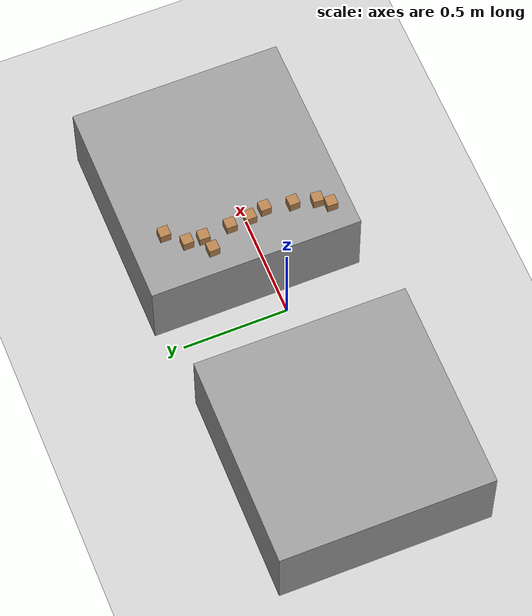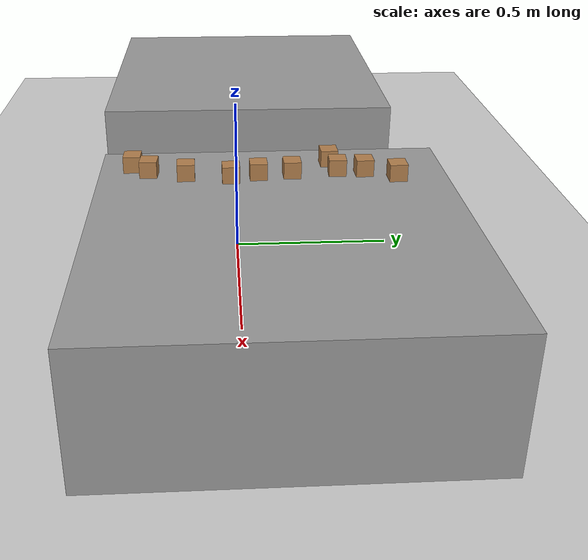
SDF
<sdf version="1.7">
 <world name="default">
  <model name="ground_plane">
   <static>1</static>
   <link name="link">
    <collision name="collision">
     <geometry><plane><normal>0 0 1</normal><size>100 100</size></plane></geometry>
     <surface>
      <contact><collide_bitmask>65535</collide_bitmask></contact>
      <friction><ode><mu>100</mu><mu2>50</mu2></ode></friction>
     </surface>
    </collision>
    <visual name="visual">
     <cast_shadows>0</cast_shadows>
     <geometry><plane><normal>0 0 1</normal><size>100 100</size></plane></geometry>
     <material>
      <script><uri>file://media/materials/scripts/gazebo.material</uri><name>Gazebo/Grey</name></script>
     </material>
    </visual>
   </link>
  </model>
  <light name="sun" type="directional">
   <pose>0 0 10 0 -0 0</pose>
   <diffuse>0.8 0.8 0.8 1</diffuse>
   <specular>0.2 0.2 0.2 1</specular>
   <attenuation>
    <range>1000</range>
    <constant>0.9</constant>
    <linear>0.01</linear>
    <quadratic>0.001</quadratic>
   </attenuation>
   <direction>-0.5 0.1 -0.9</direction>
   <spot><inner_angle>0</inner_angle><outer_angle>0</outer_angle><falloff>0</falloff></spot>
  </light>
  <physics type="ode">
   <real_time_update_rate>1000</real_time_update_rate>
   <max_step_size>0.001</max_step_size>
   <real_time_factor>1</real_time_factor>
  </physics>
  <gravity>0 0 -9.81</gravity>
  <magnetic_field>6e-06 2.3e-05 -4.2e-05</magnetic_field>
  <atmosphere type="adiabatic"/>
  <scene><ambient>0.4 0.4 0.4 1</ambient><background>0.7 0.7 0.7 1</background><shadows>1</shadows></scene>
  <spherical_coordinates>
   <surface_model>EARTH_WGS84</surface_model>
   <latitude_deg>0</latitude_deg>
   <longitude_deg>0</longitude_deg>
   <elevation>0</elevation>
   <heading_deg>0</heading_deg>
  </spherical_coordinates>
  <model name="unit_box">
   <pose>0.605618 0.100703 0.190859 -1.4e-05 1e-06 0.002503</pose>
   <link name="link">
    <inertial>
     <mass>1</mass>
     <inertia>
      <ixx>0.166667</ixx>
      <ixy>0</ixy>
      <ixz>0</ixz>
      <iyy>0.166667</iyy>
      <iyz>0</iyz>
      <izz>0.166667</izz>
     </inertia>
    </inertial>
    <collision name="collision"><geometry><box><size>1 1 0.381731</size></box></geometry></collision>
    <visual name="visual">
     <geometry><box><size>1 1 0.381731</size></box></geometry>
     <material>
      <script><name>Gazebo/Grey</name><uri>file://media/materials/scripts/gazebo.material</uri></script>
     </material>
    </visual>
   </link>
  </model>
  <model name="unit_box_clone">
   <pose>-0.776808 0.054094 0.190866 -0 -0 -0.004923</pose>
   <link name="link">
    <inertial>
     <mass>1</mass>
     <inertia>
      <ixx>0.166667</ixx>
      <ixy>0</ixy>
      <ixz>0</ixz>
      <iyy>0.166667</iyy>
      <iyz>0</iyz>
      <izz>0.166667</izz>
     </inertia>
    </inertial>
    <collision name="collision"><geometry><box><size>1 1 0.381731</size></box></geometry></collision>
    <visual name="visual">
     <geometry><box><size>1 1 0.381731</size></box></geometry>
     <material>
      <script><name>Gazebo/Grey</name><uri>file://media/materials/scripts/gazebo.material</uri></script>
     </material>
    </visual>
   </link>
  </model>
  <model name="wood_cube_5cm">
   <link name="link">
    <pose>0 0 0.025 0 -0 0</pose>
    <inertial>
     <mass>0.0565</mass>
     <inertia>
      <ixx>2.35417e-05</ixx>
      <ixy>0</ixy>
      <ixz>0</ixz>
      <iyy>2.35417e-05</iyy>
      <iyz>0</iyz>
      <izz>2.35417e-05</izz>
     </inertia>
    </inertial>
    <collision name="collision">
     <geometry><box><size>0.05 0.05 0.05</size></box></geometry>
     <surface>
      <contact>
       <poissons_ratio>0.347</poissons_ratio>
       <elastic_modulus>8.8e+09</elastic_modulus>
       <ode><kp>100000</kp><kd>1</kd><max_vel>1</max_vel><min_depth>0.001</min_depth></ode>
      </contact>
      <friction>
       <torsional>
        <coefficient>1</coefficient>
        <use_patch_radius>0</use_patch_radius>
        <surface_radius>0.05</surface_radius>
       </torsional>
      </friction>
     </surface>
    </collision>
    <visual name="visual">
     <geometry><box><size>0.05 0.05 0.05</size></box></geometry>
     <material>
      <script><uri>file://media/materials/scripts/gazebo.material</uri><name>Gazebo/Wood</name></script>
     </material>
    </visual>
   </link>
   <pose>0.35662 0.444726 0.395236 0.016726 -0.000497 0.00169</pose>
  </model>
  <model name="wood_cube_5cm_clone">
   <link name="link">
    <pose>0 0 0.025 0 -0 0</pose>
    <inertial>
     <mass>0.0565</mass>
     <inertia>
      <ixx>2.35417e-05</ixx>
      <ixy>0</ixy>
      <ixz>0</ixz>
      <iyy>2.35417e-05</iyy>
      <iyz>0</iyz>
      <izz>2.35417e-05</izz>
     </inertia>
    </inertial>
    <collision name="collision">
     <geometry><box><size>0.05 0.05 0.05</size></box></geometry>
     <surface>
      <contact>
       <poissons_ratio>0.347</poissons_ratio>
       <elastic_modulus>8.8e+09</elastic_modulus>
       <ode><kp>100000</kp><kd>1</kd><max_vel>1</max_vel><min_depth>0.001</min_depth></ode>
      </contact>
      <friction>
       <torsional>
        <coefficient>1</coefficient>
        <use_patch_radius>0</use_patch_radius>
        <surface_radius>0.05</surface_radius>
       </torsional>
      </friction>
     </surface>
    </collision>
    <visual name="visual">
     <geometry><box><size>0.05 0.05 0.05</size></box></geometry>
     <material>
      <script><uri>file://media/materials/scripts/gazebo.material</uri><name>Gazebo/Wood</name></script>
     </material>
    </visual>
   </link>
   <pose>0.297401 -0.149674 0.38166 0.000221 -5e-06 0.024035</pose>
  </model>
  <model name="wood_cube_5cm_clone_0">
   <link name="link">
    <pose>0 0 0.025 0 -0 0</pose>
    <inertial>
     <mass>0.0565</mass>
     <inertia>
      <ixx>2.35417e-05</ixx>
      <ixy>0</ixy>
      <ixz>0</ixz>
      <iyy>2.35417e-05</iyy>
      <iyz>0</iyz>
      <izz>2.35417e-05</izz>
     </inertia>
    </inertial>
    <collision name="collision">
     <geometry><box><size>0.05 0.05 0.05</size></box></geometry>
     <surface>
      <contact>
       <poissons_ratio>0.347</poissons_ratio>
       <elastic_modulus>8.8e+09</elastic_modulus>
       <ode><kp>100000</kp><kd>1</kd><max_vel>1</max_vel><min_depth>0.001</min_depth></ode>
      </contact>
      <friction>
       <torsional>
        <coefficient>1</coefficient>
        <use_patch_radius>0</use_patch_radius>
        <surface_radius>0.05</surface_radius>
       </torsional>
      </friction>
     </surface>
    </collision>
    <visual name="visual">
     <geometry><box><size>0.05 0.05 0.05</size></box></geometry>
     <material>
      <script><uri>file://media/materials/scripts/gazebo.material</uri><name>Gazebo/Wood</name></script>
     </material>
    </visual>
   </link>
   <pose>0.301171 0.056514 0.381723 0.000213 -6e-06 0.028962</pose>
  </model>
  <model name="wood_cube_5cm_clone_1">
   <link name="link">
    <pose>0 0 0.025 0 -0 0</pose>
    <inertial>
     <mass>0.0565</mass>
     <inertia>
      <ixx>2.35417e-05</ixx>
      <ixy>0</ixy>
      <ixz>0</ixz>
      <iyy>2.35417e-05</iyy>
      <iyz>0</iyz>
      <izz>2.35417e-05</izz>
     </inertia>
    </inertial>
    <collision name="collision">
     <geometry><box><size>0.05 0.05 0.05</size></box></geometry>
     <surface>
      <contact>
       <poissons_ratio>0.347</poissons_ratio>
       <elastic_modulus>8.8e+09</elastic_modulus>
       <ode><kp>100000</kp><kd>1</kd><max_vel>1</max_vel><min_depth>0.001</min_depth></ode>
      </contact>
      <friction>
       <torsional>
        <coefficient>1</coefficient>
        <use_patch_radius>0</use_patch_radius>
        <surface_radius>0.05</surface_radius>
       </torsional>
      </friction>
     </surface>
    </collision>
    <visual name="visual">
     <geometry><box><size>0.05 0.05 0.05</size></box></geometry>
     <material>
      <script><uri>file://media/materials/scripts/gazebo.material</uri><name>Gazebo/Wood</name></script>
     </material>
    </visual>
   </link>
   <pose>0.294429 0.152909 0.381791 5.6e-05 0.000126 0.016548</pose>
  </model>
  <model name="wood_cube_5cm_clone_2">
   <link name="link">
    <pose>0 0 0.025 0 -0 0</pose>
    <inertial>
     <mass>0.0565</mass>
     <inertia>
      <ixx>2.35417e-05</ixx>
      <ixy>0</ixy>
      <ixz>0</ixz>
      <iyy>2.35417e-05</iyy>
      <iyz>0</iyz>
      <izz>2.35417e-05</izz>
     </inertia>
    </inertial>
    <collision name="collision">
     <geometry><box><size>0.05 0.05 0.05</size></box></geometry>
     <surface>
      <contact>
       <poissons_ratio>0.347</poissons_ratio>
       <elastic_modulus>8.8e+09</elastic_modulus>
       <ode><kp>100000</kp><kd>1</kd><max_vel>1</max_vel><min_depth>0.001</min_depth></ode>
      </contact>
      <friction>
       <torsional>
        <coefficient>1</coefficient>
        <use_patch_radius>0</use_patch_radius>
        <surface_radius>0.05</surface_radius>
       </torsional>
      </friction>
     </surface>
    </collision>
    <visual name="visual">
     <geometry><box><size>0.05 0.05 0.05</size></box></geometry>
     <material>
      <script><uri>file://media/materials/scripts/gazebo.material</uri><name>Gazebo/Wood</name></script>
     </material>
    </visual>
   </link>
   <pose>0.21389 0.267635 0.381762 0.000219 -5e-06 0.02495</pose>
  </model>
  <model name="wood_cube_5cm_clone_3">
   <link name="link">
    <pose>0 0 0.025 0 -0 0</pose>
    <inertial>
     <mass>0.0565</mass>
     <inertia>
      <ixx>2.35417e-05</ixx>
      <ixy>0</ixy>
      <ixz>0</ixz>
      <iyy>2.35417e-05</iyy>
      <iyz>0</iyz>
      <izz>2.35417e-05</izz>
     </inertia>
    </inertial>
    <collision name="collision">
     <geometry><box><size>0.05 0.05 0.05</size></box></geometry>
     <surface>
      <contact>
       <poissons_ratio>0.347</poissons_ratio>
       <elastic_modulus>8.8e+09</elastic_modulus>
       <ode><kp>100000</kp><kd>1</kd><max_vel>1</max_vel><min_depth>0.001</min_depth></ode>
      </contact>
      <friction>
       <torsional>
        <coefficient>1</coefficient>
        <use_patch_radius>0</use_patch_radius>
        <surface_radius>0.05</surface_radius>
       </torsional>
      </friction>
     </surface>
    </collision>
    <visual name="visual">
     <geometry><box><size>0.05 0.05 0.05</size></box></geometry>
     <material>
      <script><uri>file://media/materials/scripts/gazebo.material</uri><name>Gazebo/Wood</name></script>
     </material>
    </visual>
   </link>
   <pose>0.230563 -0.305876 0.381645 0.000158 3.3e-05 -0.028143</pose>
  </model>
  <model name="wood_cube_5cm_clone_4">
   <link name="link">
    <pose>0 0 0.025 0 -0 0</pose>
    <inertial>
     <mass>0.0565</mass>
     <inertia>
      <ixx>2.35417e-05</ixx>
      <ixy>0</ixy>
      <ixz>0</ixz>
      <iyy>2.35417e-05</iyy>
      <iyz>0</iyz>
      <izz>2.35417e-05</izz>
     </inertia>
    </inertial>
    <collision name="collision">
     <geometry><box><size>0.05 0.05 0.05</size></box></geometry>
     <surface>
      <contact>
       <poissons_ratio>0.347</poissons_ratio>
       <elastic_modulus>8.8e+09</elastic_modulus>
       <ode><kp>100000</kp><kd>1</kd><max_vel>1</max_vel><min_depth>0.001</min_depth></ode>
      </contact>
      <friction>
       <torsional>
        <coefficient>1</coefficient>
        <use_patch_radius>0</use_patch_radius>
        <surface_radius>0.05</surface_radius>
       </torsional>
      </friction>
     </surface>
    </collision>
    <visual name="visual">
     <geometry><box><size>0.05 0.05 0.05</size></box></geometry>
     <material>
      <script><uri>file://media/materials/scripts/gazebo.material</uri><name>Gazebo/Wood</name></script>
     </material>
    </visual>
   </link>
   <pose>0.289088 0.361402 0.381722 0.00024 -4e-06 0.019313</pose>
  </model>
  <model name="wood_cube_5cm_clone_5">
   <link name="link">
    <pose>0 0 0.025 0 -0 0</pose>
    <inertial>
     <mass>0.0565</mass>
     <inertia>
      <ixx>2.35417e-05</ixx>
      <ixy>0</ixy>
      <ixz>0</ixz>
      <iyy>2.35417e-05</iyy>
      <iyz>0</iyz>
      <izz>2.35417e-05</izz>
     </inertia>
    </inertial>
    <collision name="collision">
     <geometry><box><size>0.05 0.05 0.05</size></box></geometry>
     <surface>
      <contact>
       <poissons_ratio>0.347</poissons_ratio>
       <elastic_modulus>8.8e+09</elastic_modulus>
       <ode><kp>100000</kp><kd>1</kd><max_vel>1</max_vel><min_depth>0.001</min_depth></ode>
      </contact>
      <friction>
       <torsional>
        <coefficient>1</coefficient>
        <use_patch_radius>0</use_patch_radius>
        <surface_radius>0.05</surface_radius>
       </torsional>
      </friction>
     </surface>
    </collision>
    <visual name="visual">
     <geometry><box><size>0.05 0.05 0.05</size></box></geometry>
     <material>
      <script><uri>file://media/materials/scripts/gazebo.material</uri><name>Gazebo/Wood</name></script>
     </material>
    </visual>
   </link>
   <pose>0.319645 -0.022058 0.381723 0.000206 -5e-06 0.01873</pose>
  </model>
  <model name="wood_cube_5cm_clone_6">
   <link name="link">
    <pose>0 0 0.025 0 -0 0</pose>
    <inertial>
     <mass>0.0565</mass>
     <inertia>
      <ixx>2.35417e-05</ixx>
      <ixy>0</ixy>
      <ixz>0</ixz>
      <iyy>2.35417e-05</iyy>
      <iyz>0</iyz>
      <izz>2.35417e-05</izz>
     </inertia>
    </inertial>
    <collision name="collision">
     <geometry><box><size>0.05 0.05 0.05</size></box></geometry>
     <surface>
      <contact>
       <poissons_ratio>0.347</poissons_ratio>
       <elastic_modulus>8.8e+09</elastic_modulus>
       <ode><kp>100000</kp><kd>1</kd><max_vel>1</max_vel><min_depth>0.001</min_depth></ode>
      </contact>
      <friction>
       <torsional>
        <coefficient>1</coefficient>
        <use_patch_radius>0</use_patch_radius>
        <surface_radius>0.05</surface_radius>
       </torsional>
      </friction>
     </surface>
    </collision>
    <visual name="visual">
     <geometry><box><size>0.05 0.05 0.05</size></box></geometry>
     <material>
      <script><uri>file://media/materials/scripts/gazebo.material</uri><name>Gazebo/Wood</name></script>
     </material>
    </visual>
   </link>
   <pose>0.284779 0.284698 0.381725 0.00023 -1e-06 -0.040478</pose>
  </model>
  <model name="wood_cube_5cm_clone_7">
   <link name="link">
    <pose>0 0 0.025 0 -0 0</pose>
    <inertial>
     <mass>0.0565</mass>
     <inertia>
      <ixx>2.35417e-05</ixx>
      <ixy>0</ixy>
      <ixz>0</ixz>
      <iyy>2.35417e-05</iyy>
      <iyz>0</iyz>
      <izz>2.35417e-05</izz>
     </inertia>
    </inertial>
    <collision name="collision">
     <geometry><box><size>0.05 0.05 0.05</size></box></geometry>
     <surface>
      <contact>
       <poissons_ratio>0.347</poissons_ratio>
       <elastic_modulus>8.8e+09</elastic_modulus>
       <ode><kp>100000</kp><kd>1</kd><max_vel>1</max_vel><min_depth>0.001</min_depth></ode>
      </contact>
      <friction>
       <torsional>
        <coefficient>1</coefficient>
        <use_patch_radius>0</use_patch_radius>
        <surface_radius>0.05</surface_radius>
       </torsional>
      </friction>
     </surface>
    </collision>
    <visual name="visual">
     <geometry><box><size>0.05 0.05 0.05</size></box></geometry>
     <material>
      <script><uri>file://media/materials/scripts/gazebo.material</uri><name>Gazebo/Wood</name></script>
     </material>
    </visual>
   </link>
   <pose>0.271204 -0.255795 0.381731 0.000173 -0 -0.06781</pose>
  </model>
  <light name="user_point_light_0" type="point">
   <pose>1.10629 0.794737 1 0 -0 0</pose>
   <diffuse>0.5 0.5 0.5 1</diffuse>
   <specular>0.1 0.1 0.1 1</specular>
   <attenuation>
    <range>20</range>
    <constant>0.5</constant>
    <linear>0.01</linear>
    <quadratic>0.001</quadratic>
   </attenuation>
   <cast_shadows>0</cast_shadows>
   <direction>0 0 -1</direction>
  </light>
 </world>
</sdf>
